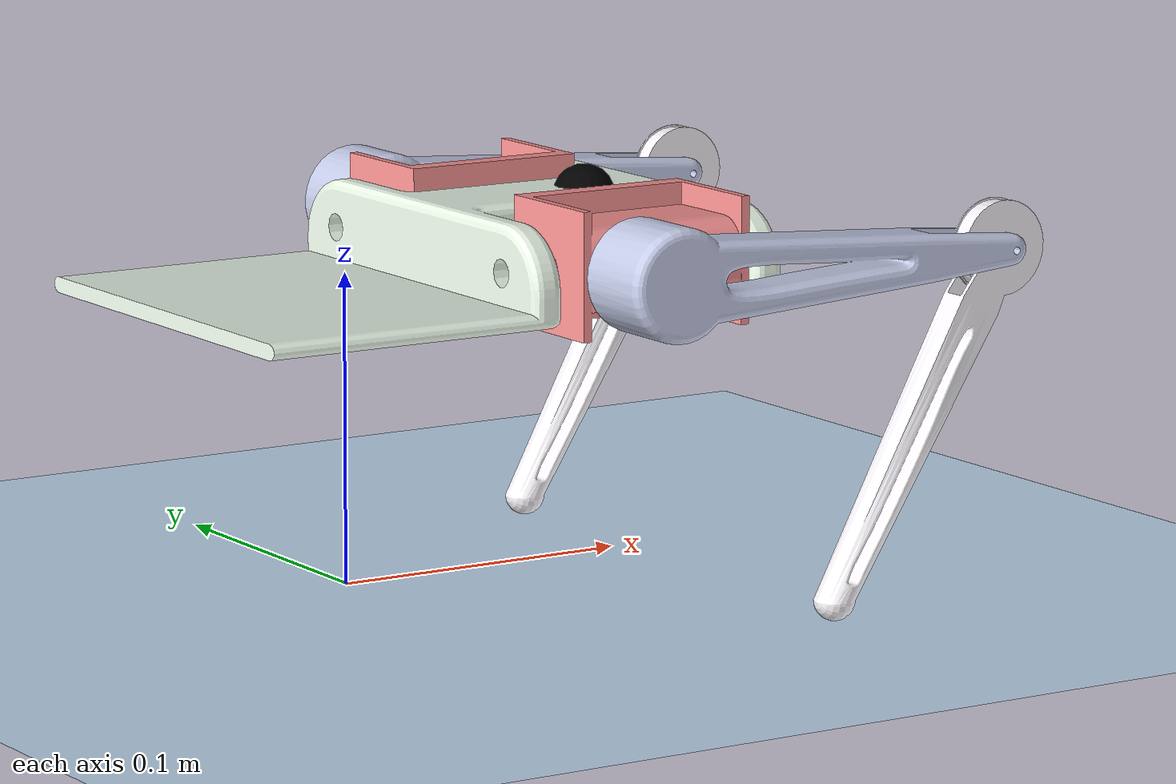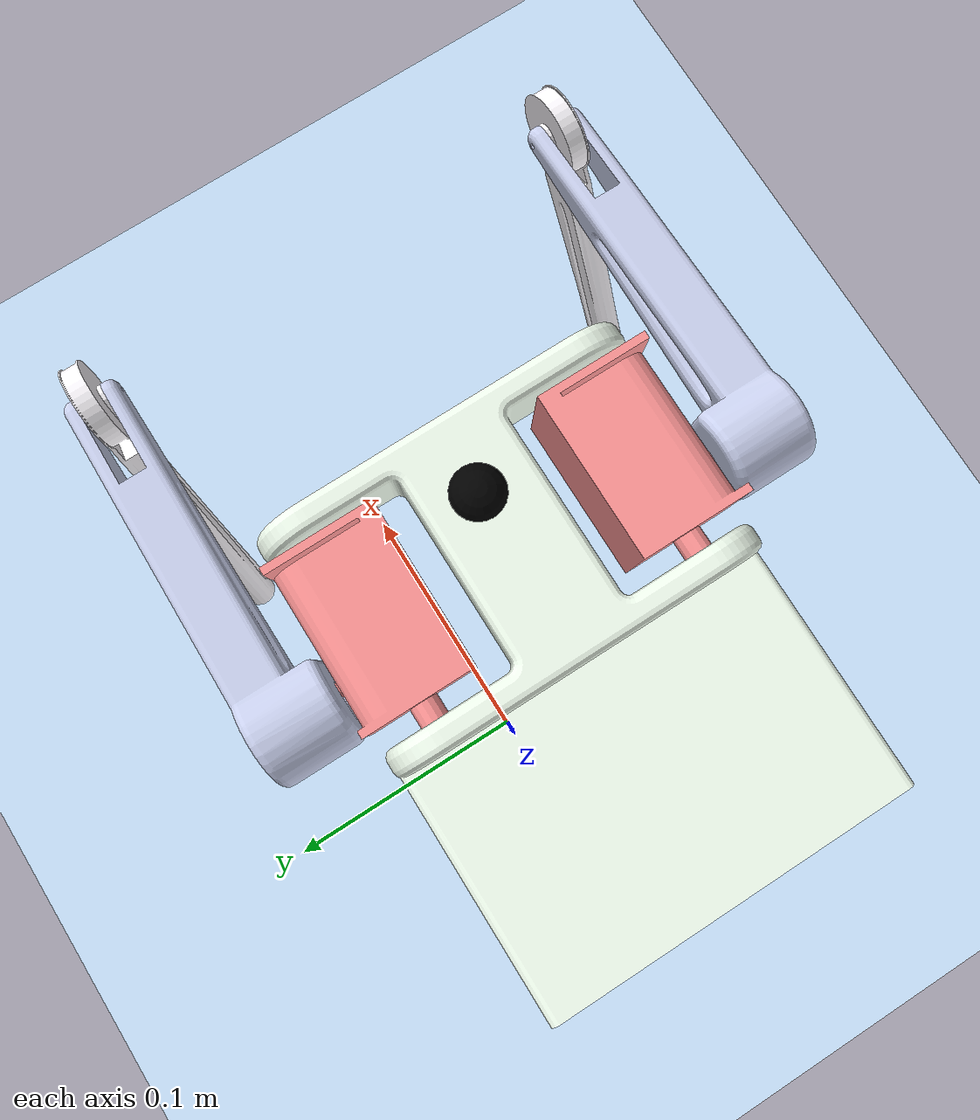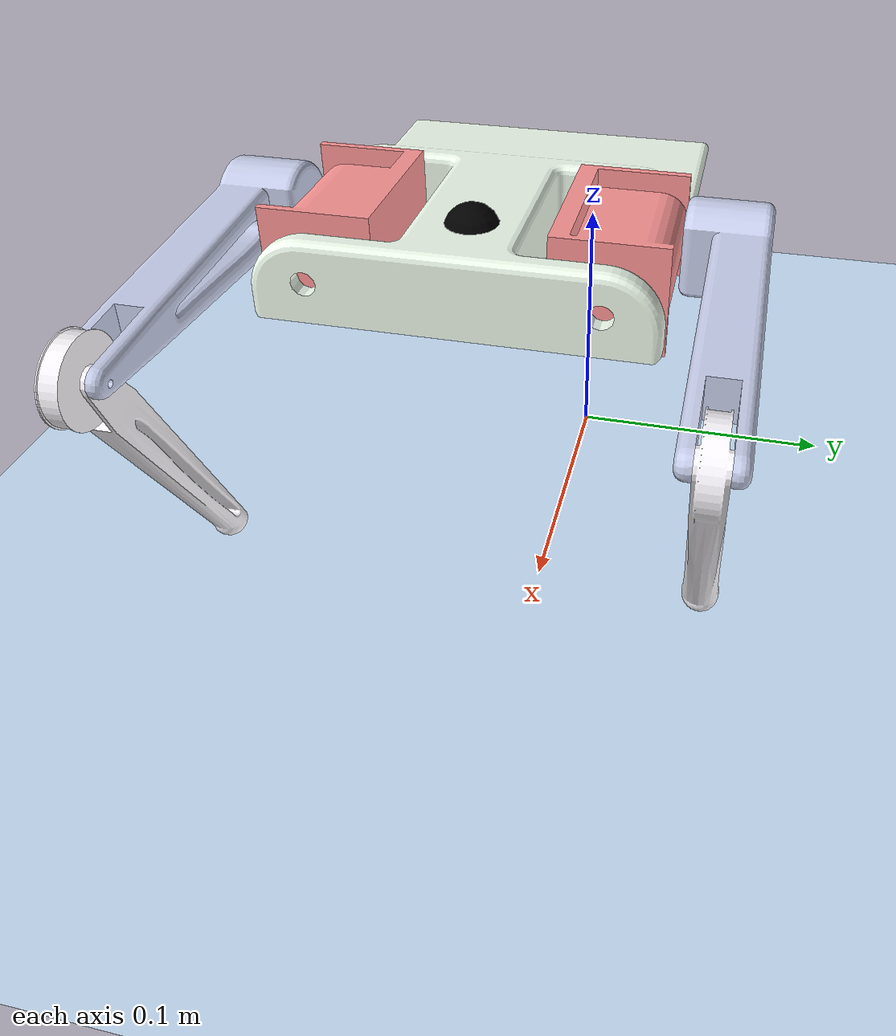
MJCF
<mujoco model="Assembly_2legs">
  <compiler angle="radian"/>

  <option gravity="0 0 -9.81" timestep="0.002">
    <flag contact="enable" gravity="enable"/>
  </option>

  <visual>
    <quality shadowsize="0"/>
  </visual>

  <size nconmax="100" njmax="500"/>

  <default>
      <geom
          solimp="0.9 0.95 0.001"
          solref="0.01 0.5"
          friction="1 0.1 0.1"
      />
  </default>

  <asset>
    <mesh name="base_link" file="base_link.STL"/>
    <mesh name="lBL0" file="lBL0.STL"/>
    <mesh name="lBL1" file="lBL1.STL"/>
    <mesh name="lBL2" file="lBL2.STL"/>
    <mesh name="lBR0" file="lBR0.STL"/>
    <mesh name="lBR1" file="lBR1.STL"/>
    <mesh name="lBR2" file="lBR2.STL"/>
    <texture name="floor_tex" type="2d" builtin="checker" rgb1="0.6 0.8 1" rgb2="1 1 1" width="512" height="512"/>
    <material name="floor_mat" texture="floor_tex" texrepeat="10 10" reflectance="0.3"/>
  </asset>

  <worldbody>
    <!-- Lighting -->
    <light name="top" pos="1 1 50"/>

    <!-- Cameras -->
    <camera name="target" mode="targetbody" target="base_link" pos="-0.15 -.4 .5" axisangle="1 0 0 90" />

    <body name="floor" pos="0 0 0">
        <!-- Checkered floor -->
        <geom name="floor" type="plane" size="5 5 0.1" rgba="0.8 0.9 1 1" material="floor_mat" pos="0 0 -0.0"/>
    </body>

    <!-- Base body with free joint -->
    <body name="base_link" pos="0 0 0.078">
      <freejoint/>
      <inertial pos="0.0279506803184872 -0.0310001450420563 0.029723393312707" quat="0.707 0 -0.707 0" mass="0.300" diaginertia="0.000657866 0.000586255 0.000110156"/>
      <geom type="mesh" rgba="0.95 1 0.941176470588235 1" mesh="base_link"/>

      <!-- IMU sensor body (visual marker) -->
      <body name="imu_site" pos="0.07 -0.03 0.045">
        <geom type="sphere" size="0.01" rgba="0 0 0 1"/>
        <site name="imu" size="0.005"/>
      </body>

      <!-- Left leg attached to base -->
      <body name="lBL0" pos="0.017811 -0.081 0.033208" quat="0.707105 0.707108 0 0">
        <inertial pos="0.0369797 0 -0.00178508" quat="0.499379 0.50062 0.50062 0.499379" mass="0.1" diaginertia="3.24734e-05 2.8721e-05 1.47782e-05"/>
        <joint name="jBL0" pos="0 0 0" axis="1 0 0" range="-1.047 1.047" damping="0.5" limited="true" stiffness="0" armature="0.01"/>
        <geom type="mesh" rgba="1 0.588235294117647 0.588235294117647 1" mesh="lBL0"/>
        <body name="lBL1" pos="0.0240622 0 0.0205">
          <inertial pos="0.0297901 -4.10804e-08 0.01769" quat="-1.82647e-05 0.687728 -1.61158e-05 0.725968" mass="0.07" diaginertia="7.89135e-05 7.86069e-05 6.20752e-06"/>
          <joint name="jBL1" pos="0 0 0" axis="0 0 1" range="-3.14159 0.2" damping="0.5" limited="true" stiffness="0" armature="0.01"/>
          <geom type="mesh" rgba="0.792156862745098 0.819607843137255 0.933333333333333 1" mesh="lBL1"/>
          <body name="lBL2" pos="0.1225 0 0.0111052">
            <inertial pos="-0.0234453 -0.0406114 0.00889478" quat="0.612222 0.353813 -0.612222 0.353813" mass="0.06" diaginertia="1.49366e-05 1.46327e-05 5.61592e-07"/>
            <joint name="jBL2" pos="0 0 0" axis="0 0 1" range="-0.5 1.047" damping="0.5" limited="true" stiffness="0" armature="0.01"/>
            <geom type="mesh" rgba="0.992156862745098 0.980392156862745 1 1" mesh="lBL2"/>
          </body>
        </body>
      </body>

      <!-- Right leg attached to base -->
      <body name="lBR0" pos="0.017811 0.019 0.033208" quat="0.707105 0.707108 0 0">
        <inertial pos="0.0369797 0 0.00178508" quat="0.50062 0.499379 0.499379 0.50062" mass="0.1" diaginertia="3.24734e-05 2.8721e-05 1.47782e-05"/>
        <joint name="jBR0" pos="0 0 0" axis="1 0 0" range="-1.047 1.047" damping="0.5" limited="true" stiffness="0" armature="0.01"/>
        <geom type="mesh" rgba="1 0.588235294117647 0.588235294117647 1" mesh="lBR0"/>
        <body name="lBR1" pos="0.0240622 0 -0.0205">
          <inertial pos="0.0297889 -8.22161e-08 -0.0176898" quat="-6.91808e-05 0.725967 -7.1593e-05 0.687729" mass="0.07" diaginertia="7.8911e-05 7.86041e-05 6.20766e-06"/>
          <joint name="jBR1" pos="0 0 0" axis="0 0 1" range="-3.14159 0.2" damping="0.5" limited="true" stiffness="0" armature="0.01"/>
          <geom type="mesh" rgba="0.792156862745098 0.819607843137255 0.933333333333333 1" mesh="lBR1"/>
          <body name="lBR2" pos="0.1225 0 -0.0111052">
            <inertial pos="-0.0234447 -0.0406102 -0.00889487" quat="0.612222 0.353817 -0.612224 0.353808" mass="0.06" diaginertia="1.49361e-05 1.46322e-05 5.61583e-07"/>
            <joint name="jBR2" pos="0 0 0" axis="0 0 1" range="-0.5 1.047" damping="0.5" limited="true" stiffness="0" armature="0.01"/>
            <geom type="mesh" rgba="0.992156862745098 0.980392156862745 1 1" mesh="lBR2"/>
          </body>
        </body>
      </body>
    </body>
  </worldbody>

  <!-- IMU Sensors -->
  <sensor>
    <!-- Accelerometer (measures linear acceleration) -->
    <accelerometer name="accel" site="imu"/>

    <!-- Gyroscope (measures angular velocity) -->
    <gyro name="gyro" site="imu"/>

    <!-- Magnetometer (measures magnetic field - optional) -->
    <magnetometer name="mag" site="imu"/>

    <!-- Frame orientation (quaternion) -->
    <framequat name="orientation" objtype="site" objname="imu"/>

    <!-- Frame linear velocity -->
    <framelinvel name="linvel" objtype="site" objname="imu"/>

    <!-- Frame angular velocity -->
    <frameangvel name="angvel" objtype="site" objname="imu"/>
  </sensor>

  <actuator>
    <motor name="motor_jBL0" joint="jBL0" gear="1" ctrllimited="true" ctrlrange="-10 10"/>
    <motor name="motor_jBL1" joint="jBL1" gear="1" ctrllimited="true" ctrlrange="-10 10"/>
    <motor name="motor_jBL2" joint="jBL2" gear="1" ctrllimited="true" ctrlrange="-10 10"/>
    <motor name="motor_jBR0" joint="jBR0" gear="1" ctrllimited="true" ctrlrange="-10 10"/>
    <motor name="motor_jBR1" joint="jBR1" gear="1" ctrllimited="true" ctrlrange="-10 10"/>
    <motor name="motor_jBR2" joint="jBR2" gear="1" ctrllimited="true" ctrlrange="-10 10"/>
  </actuator>
</mujoco>
